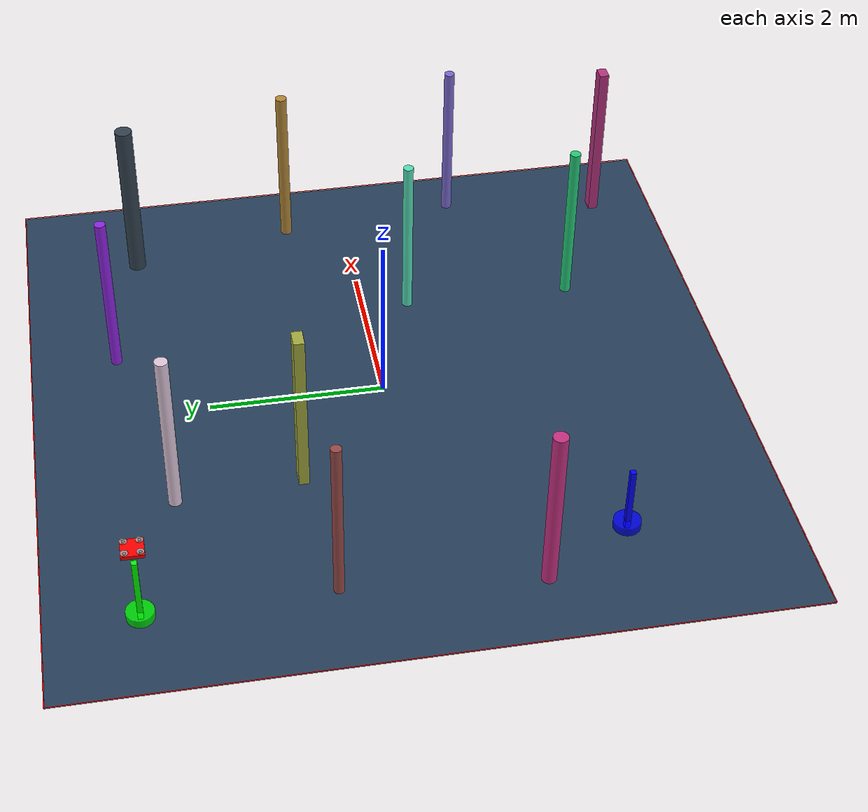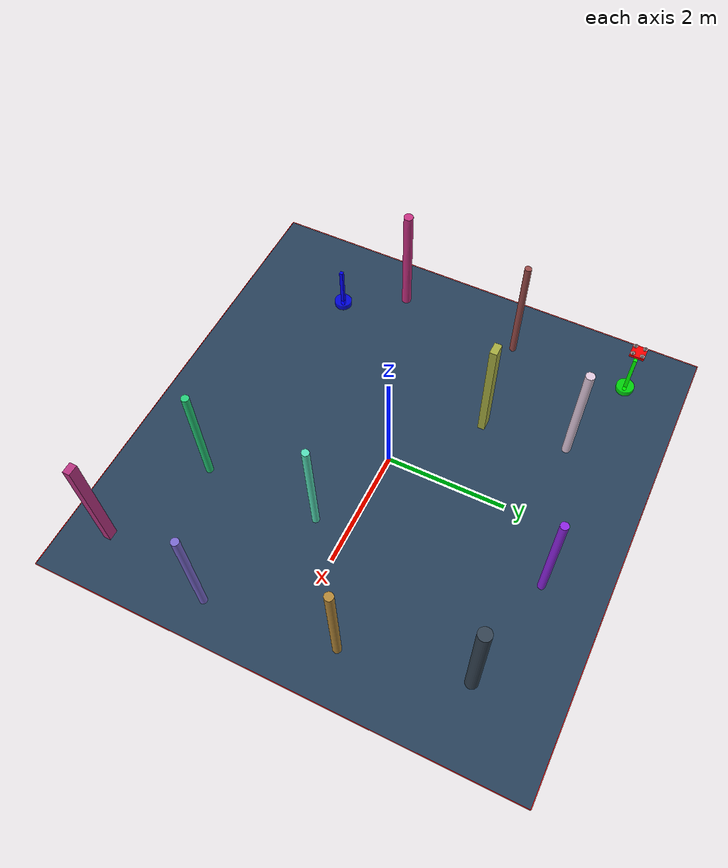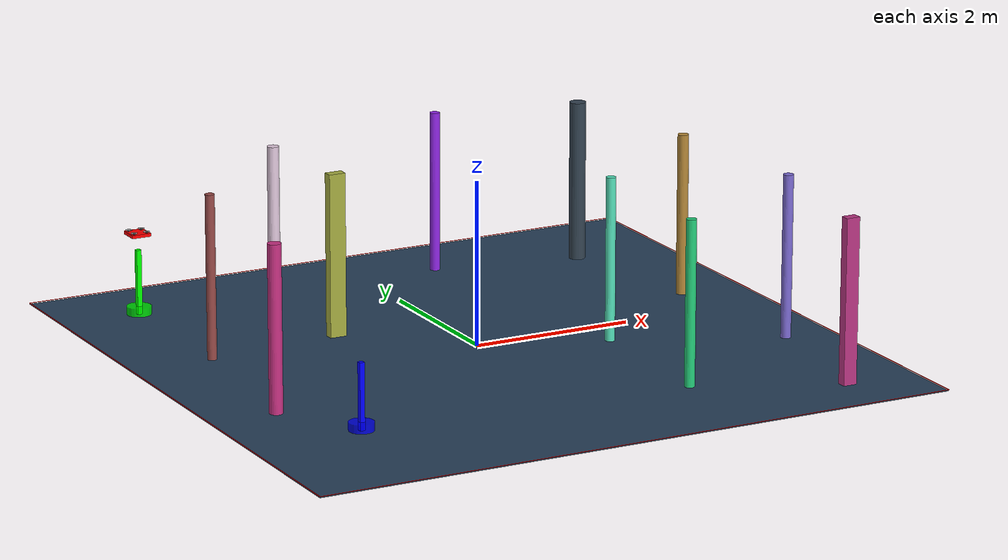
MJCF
<?xml version='1.0' encoding='utf-8'?>
<mujoco model="complex_uav_env">
  <compiler angle="degree" coordinate="local" inertiafromgeom="true" />
  <option integrator="RK4" timestep="0.01" />

  <visual>
    <headlight diffuse="0.6 0.6 0.6" ambient="0.3 0.3 0.3" />
    <rgba haze="0.15 0.25 0.35 1" />
    <global offwidth="2560" offheight="1440" />
  </visual>

  <asset>
    <texture type="skybox" builtin="gradient" rgb1="0.3 0.5 0.7" rgb2="0 0 0" width="512" height="3072" />
    <texture name="grid" type="2d" builtin="checker" rgb1="0.1 0.2 0.3" rgb2="0.2 0.3 0.4" width="512" height="512" />
    <material name="grid" texture="grid" texrepeat="1 1" />
  </asset>

  <worldbody>

    <geom name="ground" type="plane" size="4.0 4.0 0.1" material="grid" />
    <light name="light1" pos="0 0 4" dir="0 0 -1" diffuse="1 1 1" />

    <geom name="start_marker" type="cylinder" size="0.15 0.05" pos="-3.0 3.0 0.05" rgba="0 1 0 0.8" />
    <geom name="start_pole" type="box" size="0.03 0.03 0.4" pos="-3.0 3.0 0.4" rgba="0 1 0 1" />

    <geom name="goal_marker" type="cylinder" size="0.15 0.05" pos="-2.595849254170272 -2.176963699046804 0.05" rgba="0 0 1 0.8" />
    <geom name="goal_pole" type="box" size="0.03 0.03 0.4" pos="-2.595849254170272 -2.176963699046804 0.4" rgba="0 0 1 1" />

    <body name="chassis" pos="-3.0 3.0 1.0">
      <joint type="free" name="root" />
      <geom type="box" size="0.12 0.12 0.02" rgba="1.0 0.0 0.0 1.0" mass="0.8" />

      <geom type="box" size="0.08 0.01 0.005" pos="0 0 0.01" rgba="0.3 0.3 0.3 1" />
      <geom type="box" size="0.01 0.08 0.005" pos="0 0 0.01" rgba="0.3 0.3 0.3 1" />

      <geom type="cylinder" size="0.015 0.02" pos="0.08 0.08 0.015" rgba="0.2 0.2 0.2 1" />
      <geom type="cylinder" size="0.015 0.02" pos="-0.08 0.08 0.015" rgba="0.2 0.2 0.2 1" />
      <geom type="cylinder" size="0.015 0.02" pos="0.08 -0.08 0.015" rgba="0.2 0.2 0.2 1" />
      <geom type="cylinder" size="0.015 0.02" pos="-0.08 -0.08 0.015" rgba="0.2 0.2 0.2 1" />

      <geom type="cylinder" size="0.04 0.002" pos="0.08 0.08 0.035" rgba="0.7 0.7 0.7 0.8" />
      <geom type="cylinder" size="0.04 0.002" pos="-0.08 0.08 0.035" rgba="0.7 0.7 0.7 0.8" />
      <geom type="cylinder" size="0.04 0.002" pos="0.08 -0.08 0.035" rgba="0.7 0.7 0.7 0.8" />
      <geom type="cylinder" size="0.04 0.002" pos="-0.08 -0.08 0.035" rgba="0.7 0.7 0.7 0.8" />

      <site name="motor1" pos="0.08 0.08 0" size="0.01" />
      <site name="motor2" pos="-0.08 0.08 0" size="0.01" />
      <site name="motor3" pos="0.08 -0.08 0" size="0.01" />
      <site name="motor4" pos="-0.08 -0.08 0" size="0.01" />
    </body>
    <geom name="test_obs_0" type="cylinder" size="0.061616127363972914 1.0" pos="3.3841952187016338 -1.4000302064006647 1.0" rgba="0.4844356142302544 0.41655499026551657 0.8224608814192936 1.0" />
    <geom name="test_obs_1" type="cylinder" size="0.05697345347268761 1.0" pos="-2.976507448193271 0.9700368057024539 1.0" rgba="0.5935980603169132 0.29071222304534616 0.2819817528112343 1.0" />
    <geom name="test_obs_2" type="cylinder" size="0.08094876479691313 1.0" pos="-3.179710016667936 -1.1872377681419248 1.0" rgba="0.7822515730076461 0.18954951228713457 0.5129987206019397 1.0" />
    <geom name="test_obs_3" type="box" size="0.0843509559169634 0.057648690560705415 1.0" pos="3.0905966055067173 -3.2670208869427886 1.0" rgba="0.7181455097108798 0.2049411555880182 0.5053629529614798 1.0" />
    <geom name="test_obs_4" type="box" size="0.10371500110082024 0.05916803581071941 1.0" pos="-1.2934705522101386 1.1130562321491757 1.0" rgba="0.6486121334748918 0.6728096609115454 0.25124096104343596 1.0" />
    <geom name="test_obs_5" type="cylinder" size="0.06759565186908865 1.0" pos="3.181888040371636 0.7199136220243905 1.0" rgba="0.7057094834610962 0.5320485594088232 0.22006945188848617 1.0" />
    <geom name="test_obs_6" type="cylinder" size="0.06169406331215035 1.0" pos="1.4389382491280824 -2.504362370840301 1.0" rgba="0.14108146945644784 0.8058413637366532 0.477303839948901 1.0" />
    <geom name="test_obs_7" type="cylinder" size="0.072282501773194 1.0" pos="-1.4297743893380983 2.5211797458634333 1.0" rgba="0.8814568226736682 0.7887724207938017 0.8686235561505667 1.0" />
    <geom name="test_obs_8" type="cylinder" size="0.10077099031215422 1.0" pos="2.7869556918815306 2.6421643525548024 1.0" rgba="0.19936754811455115 0.25963485241655837 0.3151146259781757 1.0" />
    <geom name="test_obs_9" type="cylinder" size="0.06244092370630702 1.0" pos="0.9931599050686961 3.0077742213346816 1.0" rgba="0.5594078185734851 0.1452012913672327 0.8914948847665641 1.0" />
    <geom name="test_obs_10" type="cylinder" size="0.059256012860241306 1.0" pos="1.4851583716435222 -0.5420811406140464 1.0" rgba="0.33017306229698007 0.880841118406257 0.7259820804474785 1.0" />
  <geom name="boundary_north" type="box" size="4.0 0.005 0.002" pos="0 4.0 0.002" rgba="1.0 0.0 0.0 1.0" /><geom name="boundary_south" type="box" size="4.0 0.005 0.002" pos="0 -4.0 0.002" rgba="1.0 0.0 0.0 1.0" /><geom name="boundary_east" type="box" size="0.005 4.0 0.002" pos="4.0 0 0.002" rgba="1.0 0.0 0.0 1.0" /><geom name="boundary_west" type="box" size="0.005 4.0 0.002" pos="-4.0 0 0.002" rgba="1.0 0.0 0.0 1.0" /></worldbody>

  <actuator>
    <motor name="m1" gear="0 0 1 0 0 0" site="motor1" />
    <motor name="m2" gear="0 0 1 0 0 0" site="motor2" />
    <motor name="m3" gear="0 0 1 0 0 0" site="motor3" />
    <motor name="m4" gear="0 0 1 0 0 0" site="motor4" />
  </actuator>
</mujoco>
